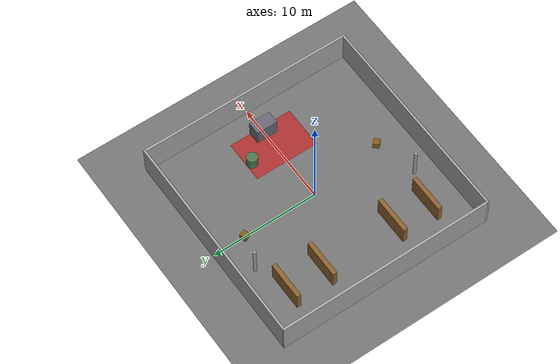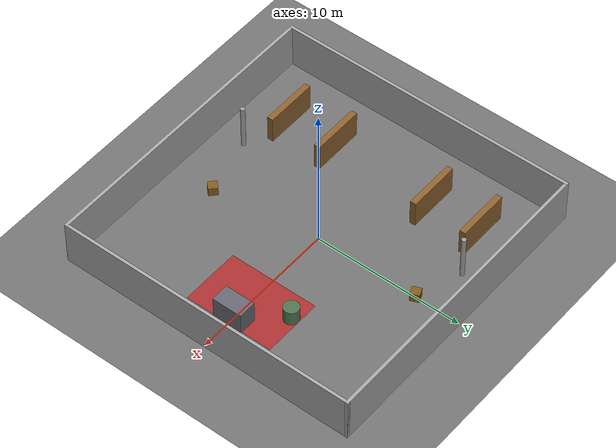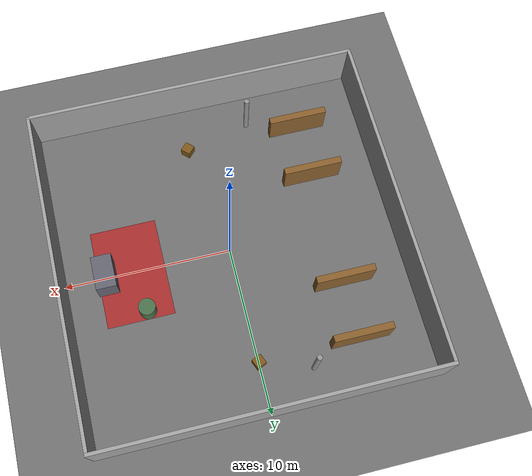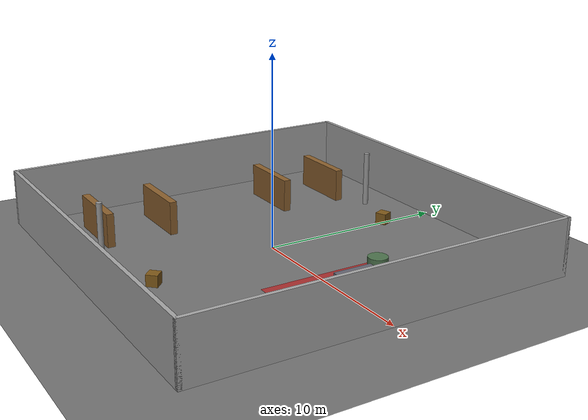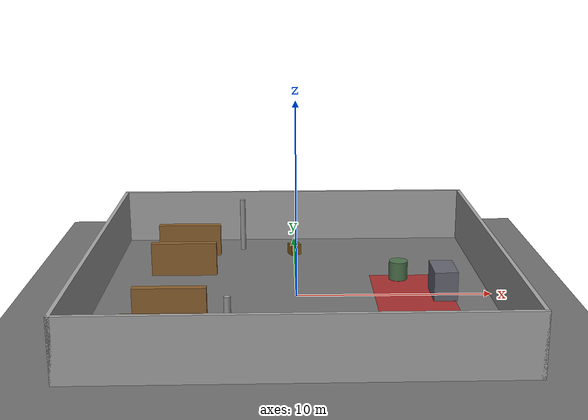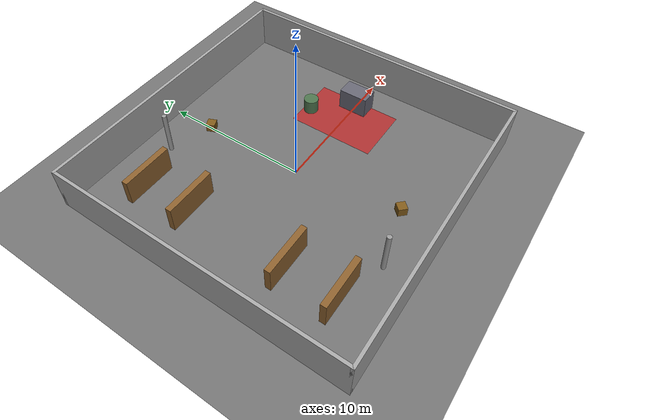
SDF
<?xml version="1.0" ?>
<sdf version="1.9">
  <world name="industrial_world">
    <physics name="default_physics" type="ode">
      <max_step_size>0.001</max_step_size>
      <real_time_factor>1.0</real_time_factor>
      <real_time_update_rate>1000</real_time_update_rate>
    </physics>

    <plugin filename="gz-sim-physics-system"
            name="gz::sim::systems::Physics"/>

    <plugin filename="gz-sim-sensors-system"
            name="gz::sim::systems::Sensors">
      <render_engine>ogre2</render_engine>
    </plugin>

    <plugin filename="gz-sim-scene-broadcaster-system"
            name="gz::sim::systems::SceneBroadcaster"/>

    <plugin filename="gz-sim-user-commands-system"
            name="gz::sim::systems::UserCommands"/>

    <light type="directional" name="sun">
      <cast_shadows>true</cast_shadows>
      <pose>0 0 10 0 0 0</pose>
      <diffuse>0.85 0.85 0.85 1</diffuse>
      <specular>0.2 0.2 0.2 1</specular>
      <direction>-0.5 0.1 -0.9</direction>
    </light>

    <model name="ground_plane">
      <static>true</static>
      <link name="link">
        <collision name="collision">
          <geometry>
            <plane>
              <normal>0 0 1</normal>
              <size>100 100</size>
            </plane>
          </geometry>
          <surface>
            <friction>
              <ode>
                <mu>0.8</mu>
                <mu2>0.8</mu2>
              </ode>
            </friction>
          </surface>
        </collision>
        <visual name="visual">
          <geometry>
            <plane>
              <normal>0 0 1</normal>
              <size>50 50</size>
            </plane>
          </geometry>
          <material>
            <ambient>0.45 0.45 0.45 1</ambient>
            <diffuse>0.45 0.45 0.45 1</diffuse>
          </material>
        </visual>
      </link>
    </model>

    <model name="wall_north">
      <static>true</static>
      <pose>0 10 1.5 0 0 0</pose>
      <link name="link">
        <collision name="col"><geometry><box><size>20.2 0.2 3</size></box></geometry></collision>
        <visual name="vis">
          <geometry><box><size>20.2 0.2 3</size></box></geometry>
          <material><ambient>0.65 0.65 0.65 1</ambient><diffuse>0.65 0.65 0.65 1</diffuse></material>
        </visual>
      </link>
    </model>

    <model name="wall_south">
      <static>true</static>
      <pose>0 -10 1.5 0 0 0</pose>
      <link name="link">
        <collision name="col"><geometry><box><size>20.2 0.2 3</size></box></geometry></collision>
        <visual name="vis">
          <geometry><box><size>20.2 0.2 3</size></box></geometry>
          <material><ambient>0.65 0.65 0.65 1</ambient><diffuse>0.65 0.65 0.65 1</diffuse></material>
        </visual>
      </link>
    </model>

    <model name="wall_east">
      <static>true</static>
      <pose>10 0 1.5 0 0 0</pose>
      <link name="link">
        <collision name="col"><geometry><box><size>0.2 20.2 3</size></box></geometry></collision>
        <visual name="vis">
          <geometry><box><size>0.2 20.2 3</size></box></geometry>
          <material><ambient>0.65 0.65 0.65 1</ambient><diffuse>0.65 0.65 0.65 1</diffuse></material>
        </visual>
      </link>
    </model>

    <model name="wall_west">
      <static>true</static>
      <pose>-10 0 1.5 0 0 0</pose>
      <link name="link">
        <collision name="col"><geometry><box><size>0.2 20.2 3</size></box></geometry></collision>
        <visual name="vis">
          <geometry><box><size>0.2 20.2 3</size></box></geometry>
          <material><ambient>0.65 0.65 0.65 1</ambient><diffuse>0.65 0.65 0.65 1</diffuse></material>
        </visual>
      </link>
    </model>

    <model name="rack_1">
      <static>true</static>
      <pose>-6 7 0.9 0 0 0</pose>
      <link name="link">
        <collision name="col"><geometry><box><size>3.5 0.4 1.8</size></box></geometry></collision>
        <visual name="vis">
          <geometry><box><size>3.5 0.4 1.8</size></box></geometry>
          <material><ambient>0.55 0.38 0.18 1</ambient><diffuse>0.55 0.38 0.18 1</diffuse></material>
        </visual>
      </link>
    </model>

    <model name="rack_2">
      <static>true</static>
      <pose>-6 3.5 0.9 0 0 0</pose>
      <link name="link">
        <collision name="col"><geometry><box><size>3.5 0.4 1.8</size></box></geometry></collision>
        <visual name="vis">
          <geometry><box><size>3.5 0.4 1.8</size></box></geometry>
          <material><ambient>0.55 0.38 0.18 1</ambient><diffuse>0.55 0.38 0.18 1</diffuse></material>
        </visual>
      </link>
    </model>

    <model name="rack_3">
      <static>true</static>
      <pose>-6 -3.5 0.9 0 0 0</pose>
      <link name="link">
        <collision name="col"><geometry><box><size>3.5 0.4 1.8</size></box></geometry></collision>
        <visual name="vis">
          <geometry><box><size>3.5 0.4 1.8</size></box></geometry>
          <material><ambient>0.55 0.38 0.18 1</ambient><diffuse>0.55 0.38 0.18 1</diffuse></material>
        </visual>
      </link>
    </model>

    <model name="rack_4">
      <static>true</static>
      <pose>-6 -7 0.9 0 0 0</pose>
      <link name="link">
        <collision name="col"><geometry><box><size>3.5 0.4 1.8</size></box></geometry></collision>
        <visual name="vis">
          <geometry><box><size>3.5 0.4 1.8</size></box></geometry>
          <material><ambient>0.55 0.38 0.18 1</ambient><diffuse>0.55 0.38 0.18 1</diffuse></material>
        </visual>
      </link>
    </model>

    <model name="pillar_nw">
      <static>true</static>
      <pose>-3 8 1.5 0 0 0</pose>
      <link name="link">
        <collision name="col"><geometry><cylinder><radius>0.15</radius><length>3.0</length></cylinder></geometry></collision>
        <visual name="vis">
          <geometry><cylinder><radius>0.15</radius><length>3.0</length></cylinder></geometry>
          <material><ambient>0.6 0.6 0.6 1</ambient><diffuse>0.6 0.6 0.6 1</diffuse></material>
        </visual>
      </link>
    </model>

    <model name="pillar_sw">
      <static>true</static>
      <pose>-3 -8 1.5 0 0 0</pose>
      <link name="link">
        <collision name="col"><geometry><cylinder><radius>0.15</radius><length>3.0</length></cylinder></geometry></collision>
        <visual name="vis">
          <geometry><cylinder><radius>0.15</radius><length>3.0</length></cylinder></geometry>
          <material><ambient>0.6 0.6 0.6 1</ambient><diffuse>0.6 0.6 0.6 1</diffuse></material>
        </visual>
      </link>
    </model>

    <model name="danger_zone_marker">
      <static>true</static>
      <pose>6 0 0.005 0 0 0</pose>
      <link name="link">
        <visual name="vis">
          <geometry><box><size>4.0 6.0 0.01</size></box></geometry>
          <material>
            <ambient>0.85 0.05 0.05 0.6</ambient>
            <diffuse>0.85 0.05 0.05 0.6</diffuse>
          </material>
        </visual>
        <!-- No collision — robot can enter zone (zone_monitor stops it logically) -->
      </link>
    </model>

    <model name="machinery_a">
      <static>true</static>
      <pose>7.5 0 0.75 0 0 0</pose>
      <link name="link">
        <collision name="col"><geometry><box><size>1.2 2.0 1.5</size></box></geometry></collision>
        <visual name="vis">
          <geometry><box><size>1.2 2.0 1.5</size></box></geometry>
          <material><ambient>0.4 0.4 0.45 1</ambient><diffuse>0.4 0.4 0.45 1</diffuse></material>
        </visual>
      </link>
    </model>

    <model name="machinery_b">
      <static>true</static>
      <pose>5.5 2.5 0.5 0 0 0</pose>
      <link name="link">
        <collision name="col"><geometry><cylinder><radius>0.5</radius><length>1.0</length></cylinder></geometry></collision>
        <visual name="vis">
          <geometry><cylinder><radius>0.5</radius><length>1.0</length></cylinder></geometry>
          <material><ambient>0.3 0.45 0.3 1</ambient><diffuse>0.3 0.45 0.3 1</diffuse></material>
        </visual>
      </link>
    </model>

    <model name="crate_1">
      <static>true</static>
      <pose>0 7 0.3 0 0 0.4</pose>
      <link name="link">
        <collision name="col"><geometry><box><size>0.6 0.6 0.6</size></box></geometry></collision>
        <visual name="vis">
          <geometry><box><size>0.6 0.6 0.6</size></box></geometry>
          <material><ambient>0.5 0.35 0.1 1</ambient><diffuse>0.5 0.35 0.1 1</diffuse></material>
        </visual>
      </link>
    </model>

    <model name="crate_2">
      <static>true</static>
      <pose>1 -7 0.3 0 0 0.8</pose>
      <link name="link">
        <collision name="col"><geometry><box><size>0.6 0.6 0.6</size></box></geometry></collision>
        <visual name="vis">
          <geometry><box><size>0.6 0.6 0.6</size></box></geometry>
          <material><ambient>0.5 0.35 0.1 1</ambient><diffuse>0.5 0.35 0.1 1</diffuse></material>
        </visual>
      </link>
    </model>

  </world>
</sdf>
